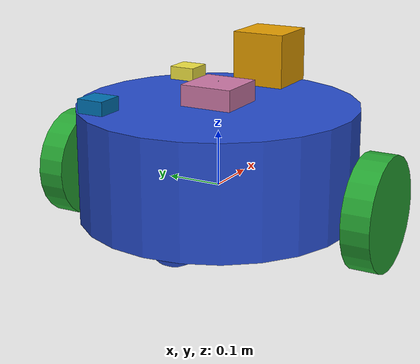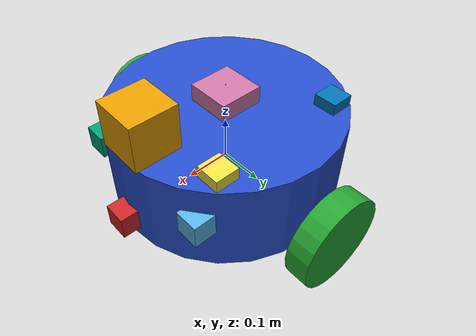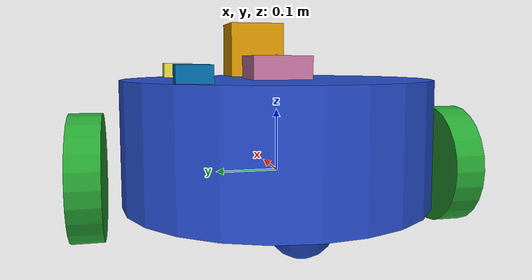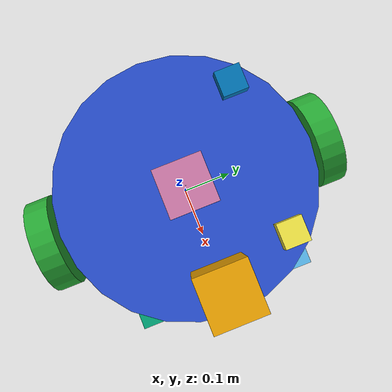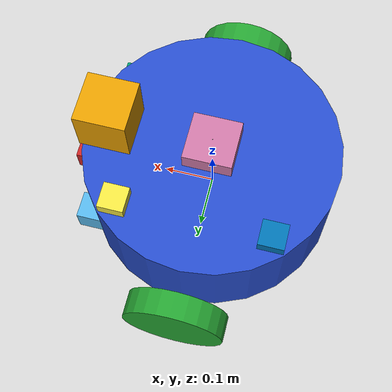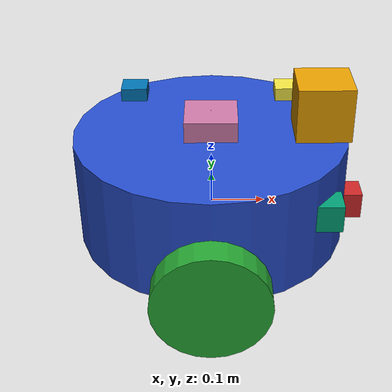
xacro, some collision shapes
<?xml version='1.0'?>

<robot name="robothesis"
  xmlns:xacro="http://www.ros.org/wiki/xacro">

  <xacro:include filename="$(find robothesis)/urdf/robothesis.gazebo" />

  <gazebo reference="left_wheel">
    <material>Gazebo/Green</material>
  </gazebo>

  <gazebo reference="right_wheel">
    <material>Gazebo/Green</material>
  </gazebo>

  <gazebo reference="camera">
    <material>Gazebo/Red</material>
  </gazebo>

  <gazebo reference="chassis">
    <material>Gazebo/Blue</material>
  </gazebo>
  <link name="base_link"></link>

  <joint name="robot_footprint_joint" type="fixed">
    <origin xyz="0 0 0" rpy="0 0 0" />
    <parent link="base_link"/>
    <child link="chassis" />
  </joint>

  <joint name="camera_joint" type="fixed">
    <origin xyz="0.26 0 0" rpy="0 0 0" />
    <parent link="chassis"/>
    <child link="camera" />
    <axis xyz="0 1 0"/>
  </joint>

 <joint name="gps_joint" type="fixed">
        <axis xyz="0 1 0"/>
        <parent link="chassis"/>
        <child link="gps_link"/>
        <origin xyz="0 0 0.14" rpy="0 0 3.14159"/>
    </joint>

    <joint name="imu_joint" type="fixed">
    <axis xyz="1 0 0"/>
    <origin xyz="0 0 0.19"/>
    <parent link="chassis"/>
    <child link="imu_link"/>
  </joint>

  <joint name="hokuyo_joint" type="fixed">
    <origin xyz="0.2 0 0.2" rpy="0 0 0" />
    <parent link="chassis"/>
    <child link="hokuyo" />
    <axis xyz="0 1 0"/>
  </joint>

  <joint type="continuous" name="left_wheel_hinge">
    <origin xyz="0 0.30 0" rpy="0 0 0" />
    <parent link="chassis"/>
    <child link="left_wheel" />
    <axis xyz="0 1 0" rpy="0 0 0" />
    <limit effort="10000" velocity="1000" />
    <dynamics damping="1.0" friction="1.0" />
  </joint>

  <joint type="continuous" name="right_wheel_hinge">
    <origin xyz="0 -0.30 0" rpy="0 0 0" />
    <parent link="chassis"/>
    <child link="right_wheel" />
    <axis xyz="0 1 0" rpy="0 0 0" />
    <limit effort="10000" velocity="1000" />
    <dynamics damping="1.0" friction="1.0" />
  </joint>

  <!--Description for Distance sensor 1-->
  <joint name = "ruler_joint1" type = "fixed">
    <axis xyz = "0 1 0" />
    <origin xyz = "0.2 0.15 0.07" rpy = "0 0 0" />
    <parent link = "chassis" />
    <child link ="link_1 " />
  </joint>
  <link name ="link_1 ">
    <collision>
      <origin xyz = "-0.05 0 0" rpy = "0 0 0" />
      <geometry> <box size = "0.05 0.05 0.05" />
      </geometry>
    </collision>
   <visual>
     <origin xyz = "0 0 0" rpy = "0 0 0" />
     <geometry>
        <box size = "0.05 0.05 0.05" />
     </geometry>
   </visual>
   <inertial>
    <mass value = "1e-5" />
    <origin xyz = "0 0 0" rpy = "0 0 0" />
    <inertia ixx = "1e-6" ixy = "0" ixz = "0" iyy = "1e-6" iyz = "0" izz = "1e-6" />
   </inertial>
  </link>
  <!--Description for Distance sensor 2-->
  <joint name = "ruler_joint2" type = "fixed">
    <axis xyz = "0 1 0" />
    <origin xyz = "0.2 -0.15 0.07" rpy = "0 0 0" />
    <parent link = "chassis" />
    <child link ="link_2" />
  </joint>
  <link name ="link_2">
    <collision>
      <origin xyz = "-0.05 0 0" rpy = "0 0 0" />
      <geometry>
       <box size = "0.05 0.05 0.05" />
      </geometry>
    </collision>
   <visual>
     <origin xyz = "0 0 0" rpy = "0 0 0" />
     <geometry>
         <box size = "0.05 0.05 0.05" />
     </geometry>
   </visual>
   <inertial>
    <mass value = "1e-5" />
    <origin xyz = "0 0 0" rpy = "0 0 0" />
    <inertia ixx = "1e-6" ixy = "0" ixz = "0" iyy = "1e-6" iyz = "0" izz = "1e-6" />
   </inertial>
  </link>
  <!--Description for Distance sensor 3-->
  <joint name = "ruler_joint3" type = "fixed">
    <axis xyz = "0 1 0" />
    <origin xyz = "0.15 0.15 0.15" rpy = "0 0 0" />
    <parent link = "chassis" />
    <child link ="link_3" />
  </joint>
  <link name ="link_3">
    <collision>
      <origin xyz = "-0.05 0 0" rpy = "0 0 0" />
      <geometry>
         <box size = "0.05 0.05 0.05" />
      </geometry>
    </collision>
   <visual>
     <origin xyz = "0 0 0" rpy = "0 0 0" />
     <geometry>
        <box size = "0.05 0.05 0.05" />
     </geometry>
   </visual>
   <inertial>
    <mass value = "1e-5" />
    <origin xyz = "0 0 0" rpy = "0 0 0" />
    <inertia ixx = "1e-6" ixy = "0" ixz = "0" iyy = "1e-6" iyz = "0" izz = "1e-6" />
   </inertial>
  </link>
  <!--Description for Distance sensor 4-->
  <joint name = "ruler_joint4" type = "fixed">
    <axis xyz = "0 1 0" />
    <origin xyz = "-0.15 0.15 0.15" rpy = "0 0 0" />
    <parent link = "chassis" />
    <child link ="link_4" />
  </joint>
  <link name ="link_4">
    <collision>
      <origin xyz = "-0.05 0 0" rpy = "0 0 0" />
      <geometry>
         <box size = "0.05 0.05 0.05" />
      </geometry>
    </collision>
   <visual>
     <origin xyz = "0 0 0" rpy = "0 0 0" />
     <geometry>
        <box size = "0.05 0.05 0.05" />
     </geometry>
   </visual>
   <inertial>
    <mass value = "1e-5" />
    <origin xyz = "0 0 0" rpy = "0 0 0" />
    <inertia ixx = "1e-6" ixy = "0" ixz = "0" iyy = "1e-6" iyz = "0" izz = "1e-6" />
   </inertial>
  </link>

  <link name="camera">
    <inertial>
      <mass value="0.1"/>
      <origin xyz="0 0 0" rpy="0 0 0"/>
      <inertia ixx="1e-6" ixy="0.0" ixz="0.0" iyy="1e-6" iyz="0.0" izz="1e-6" />
    </inertial>

    <collision>
      <origin xyz="0 0 0" rpy="0 0 0"/>
      <geometry>
        <box size="0.05 0.05 0.05"/>
      </geometry>
    </collision>

    <visual>
      <origin xyz="0 0 0" rpy="0 0 0"/>
      <geometry>
        <box size="0.05 0.05 0.05"/>
      </geometry>
    </visual>

  </link>

<link name="gps_link">
        <inertial>
            <mass value="0.001"/>
            <origin rpy="0 0 0" xyz="0 0 0"/>
            <inertia ixx="0.0001" ixy="0" ixz="0" iyy="0.000001" iyz="0" izz="0.0001"/>
        </inertial>
        <visual>
            <origin rpy="0 0 0" xyz="0 0 0"/>
            <geometry>
                <mesh filename="package://robothesis/meshes/GPSAntennaScaledDown.dae"/>
            </geometry>
        </visual>
        <collision>
            <origin rpy="0 0 0" xyz="0 0 0"/>
            <geometry>
                <box size="0.096 0.096 0.096"/>
            </geometry>
        </collision>
    </link>

<link name="imu_link">
  <inertial>
    <mass value="0.001"/>
    <origin rpy="0 0 0" xyz="0 0 0"/>
    <inertia ixx="0.0001" ixy="0" ixz="0" iyy="0.000001" iyz="0" izz="0.0001"/>
  </inertial>
  <visual>
    <origin rpy="0 0 0" xyz="0 0 0"/>
    <geometry>
      <box size="0.001 0.001 0.001"/>
    </geometry>
  </visual>
  <collision>
    <origin rpy="0 0 0" xyz="0 0 0"/>
    <geometry>
      <box size=".001 .001 .001"/>
    </geometry>
  </collision>
</link>

  <link name="hokuyo">
    <inertial>
      <mass value="1e-5"/>
      <origin xyz="0 0 0" rpy="0 0 0"/>
      <inertia ixx="1e-6" ixy="0.0" ixz="0.0" iyy="1e-6" iyz="0.0" izz="1e-6" />
    </inertial>

    <collision>
      <origin xyz="0 0 0" rpy="0 0 0"/>
      <geometry>
        <box size="0.1 0.1 0.1"/>
      </geometry>
    </collision>

    <visual>
      <origin xyz="0 0 0" rpy="0 0 0"/>
      <geometry>
        <mesh filename="package://robothesis/meshes/hokuyo.dae"/>
      </geometry>
    </visual>

  </link>

  <link name="left_wheel">
    <inertial>
      <mass value="5"/>
      <origin xyz="0 0 0" rpy="0 1.5707 1.5707"/>
      <inertia ixx="0.1" ixy="0.0" ixz="0.0" iyy="0.1" iyz="0.0" izz="0.1" />
    </inertial>

    <collision>
      <origin xyz="0 0 0" rpy="0 1.5707 1.5707"/>
      <geometry>
        <cylinder radius="0.1" length="0.05"/>
      </geometry>
    </collision>

    <visual>
      <origin xyz="0 0 0" rpy="0 1.5707 1.5707"/>
      <geometry>
        <cylinder radius="0.1" length="0.05"/>
      </geometry>
    </visual>

  </link>

  <link name="right_wheel">
    <inertial>
      <mass value="5"/>
      <origin xyz="0 0 0" rpy="0 1.5707 1.5707"/>
      <inertia ixx="0.1" ixy="0.0" ixz="0.0" iyy="0.1" iyz="0.0" izz="0.1" />
    </inertial>

    <collision>
      <origin xyz="0 0 0" rpy="0 1.5707 1.5707"/>
      <geometry>
        <cylinder radius="0.1" length="0.05"/>
      </geometry>
    </collision>

    <visual>
      <origin xyz="0 0 0" rpy="0 1.5707 1.5707"/>
      <geometry>
        <cylinder radius="0.1" length="0.05"/>
      </geometry>
    </visual>

  </link>

  <link name='chassis'>
    <pose>0 0 0.1 0 0 0</pose>

    <inertial>
      <mass value="15.0"/>
      <origin xyz="0.0 0 0" rpy=" 0 0 0"/>
      <inertia ixx="0.1" ixy="0" ixz="0" iyy="0.1" iyz="0" izz="0.1" />
    </inertial>

    <collision name='collision'>
      <origin xyz="0 0 0.05" rpy=" 0 0 0"/>
      <geometry>
        <cylinder length="0.2" radius="0.25"/>
      </geometry>
    </collision>

    <visual name='chassis_visual'>
      <origin xyz="0 0 0.05" rpy=" 0 0 0"/>
      <geometry>
        <cylinder length="0.2" radius="0.25"/>
      </geometry>
    </visual>

    <collision name='back_caster_collision'>
      <origin xyz="-0.15 0 -0.05" rpy=" 0 0 0"/>
      <geometry>
        <sphere radius="0.0499"/>
      </geometry>
    </collision>

    <visual name='back_caster_visual'>
      <origin xyz="-0.15 0 -0.05" rpy=" 0 0 0"/>
      <geometry>
        <sphere radius="0.05"/>
      </geometry>
    </visual>

    <collision name='front_caster_collision'>
      <origin xyz="0.15 0 -0.05" rpy=" 0 0 0"/>
      <geometry>
        <sphere radius="0.0499"/>
      </geometry>
    </collision>

    <visual name='front_caster_visual'>
      <origin xyz="0.15 0 -0.05" rpy=" 0 0 0"/>
      <geometry>
        <sphere radius="0.05"/>
      </geometry>
    </visual>

  </link>

</robot>
